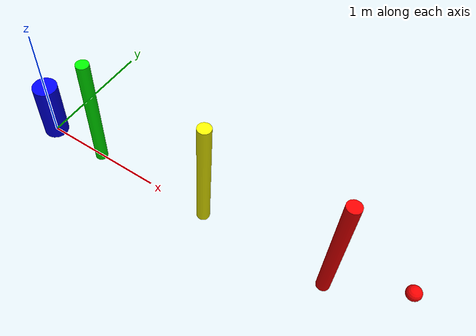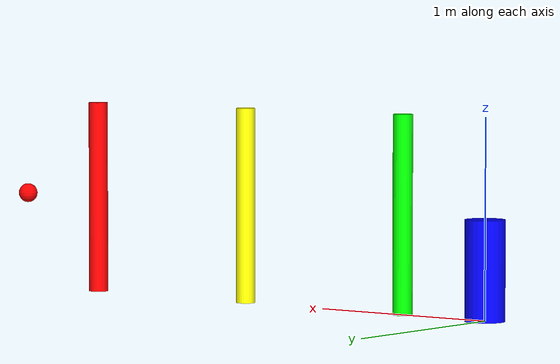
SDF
<sdf version='1.11'>
  <model name='planar_arm'>
    <link name='base_link'>
      <inertial>
        <pose>0 0 0 0 0 0</pose>
        <mass>1</mass>
        <inertia>
          <ixx>0.01</ixx>
          <ixy>0</ixy>
          <ixz>0</ixz>
          <iyy>0.01</iyy>
          <iyz>0</iyz>
          <izz>0.01</izz>
        </inertia>
      </inertial>
      <collision name='base_link_collision'>
        <pose>0 0 0.25 0 0 0</pose>
        <geometry>
          <cylinder>
            <length>0.5</length>
            <radius>0.10000000000000001</radius>
          </cylinder>
        </geometry>
      </collision>
      <visual name='base_link_visual'>
        <pose>0 0 0.25 0 0 0</pose>
        <geometry>
          <cylinder>
            <length>0.5</length>
            <radius>0.10000000000000001</radius>
          </cylinder>
        </geometry>
        <material>
          <diffuse>0 0 1 1</diffuse>
          <ambient>0 0 1 1</ambient>
        </material>
      </visual>
    </link>

    <joint name='joint1' type='revolute'>
      <pose relative_to='base_link'>0 0 0.5 0 0 0</pose>
      <parent>base_link</parent>
      <child>link1</child>
      <axis>
        <xyz>0 1 0</xyz>
        <limit>
          <lower>-3.1400000000000001</lower>
          <upper>3.1400000000000001</upper>
          <effort>100</effort>
          <velocity>1</velocity>
        </limit>
        <dynamics>
          <spring_reference>0</spring_reference>
          <spring_stiffness>0</spring_stiffness>
        </dynamics>
      </axis>
    </joint>

    <link name='link1'>
      <pose relative_to='joint1'>0 0 0 0 0 0</pose>
      <inertial>
        <pose>0 0 0 0 0 0</pose>
        <mass>1</mass>
        <inertia>
          <ixx>0.01</ixx>
          <ixy>0</ixy>
          <ixz>0</ixz>
          <iyy>0.01</iyy>
          <iyz>0</iyz>
          <izz>0.01</izz>
        </inertia>
      </inertial>
      <collision name='link1_collision'>
        <pose>0.5 0 0 0 1.5707963267948966 0</pose>
        <geometry>
          <cylinder>
            <length>1</length>
            <radius>0.050000000000000003</radius>
          </cylinder>
        </geometry>
      </collision>
      <visual name='link1_visual'>
        <pose>0.5 0 0 0 0 0</pose>
        <geometry>
          <cylinder>
            <length>1</length>
            <radius>0.050000000000000003</radius>
          </cylinder>
        </geometry>
        <material>
          <diffuse>0 1 0 1</diffuse>
          <ambient>0 1 0 1</ambient>
        </material>
      </visual>
    </link>

    <joint name='joint2' type='revolute'>
      <pose relative_to='link1'>1 0 0 0 0 0</pose>
      <parent>link1</parent>
      <child>link2</child>
      <axis>
        <xyz>0 1 0</xyz>
        <limit>
          <lower>-3.1400000000000001</lower>
          <upper>3.1400000000000001</upper>
          <effort>100</effort>
          <velocity>1</velocity>
        </limit>
        <dynamics>
          <spring_reference>0</spring_reference>
          <spring_stiffness>0</spring_stiffness>
        </dynamics>
      </axis>
    </joint>

    <link name='link2'>
      <pose relative_to='joint2'>0 0 0 0 0 0</pose>
      <inertial>
        <pose>0 0 0 0 0 0</pose>
        <mass>1</mass>
        <inertia>
          <ixx>0.01</ixx>
          <ixy>0</ixy>
          <ixz>0</ixz>
          <iyy>0.01</iyy>
          <iyz>0</iyz>
          <izz>0.01</izz>
        </inertia>
      </inertial>
      <collision name='link2_collision'>
        <pose>0.5 0 0 0 1.5707963267948966 0</pose>
        <geometry>
          <cylinder>
            <length>1</length>
            <radius>0.050000000000000003</radius>
          </cylinder>
        </geometry>
      </collision>
      <visual name='link2_visual'>
        <pose>0.5 0 0 0 0 0</pose>
        <geometry>
          <cylinder>
            <length>1</length>
            <radius>0.050000000000000003</radius>
          </cylinder>
        </geometry>
        <material>
          <diffuse>1 1 0 1</diffuse>
          <ambient>1 1 0 1</ambient>
        </material>
      </visual>
    </link>

    <joint name='joint3' type='revolute'>
      <pose relative_to='link2'>1 0 0 0 0 0</pose>
      <parent>link2</parent>
      <child>link3</child>
      <axis>
        <xyz>0 1 0</xyz>
        <limit>
          <lower>-3.1400000000000001</lower>
          <upper>3.1400000000000001</upper>
          <effort>100</effort>
          <velocity>1</velocity>
        </limit>
        <dynamics>
          <spring_reference>0</spring_reference>
          <spring_stiffness>0</spring_stiffness>
        </dynamics>
      </axis>
    </joint>

    <link name='link3'>
      <pose relative_to='joint3'>0 0 0 0 0 0</pose>
      <inertial>
        <pose>0.16666666666666671 0 0 0 0 0</pose>
        <mass>1.2</mass>
        <inertia>
          <ixx>0.010999999999999999</ixx>
          <ixy>0</ixy>
          <ixz>0</ixz>
          <iyy>0.17766666666666669</iyy>
          <iyz>0</iyz>
          <izz>0.17766666666666669</izz>
        </inertia>
      </inertial>
      <collision name='link3_collision'>
        <pose>0.5 0 0 0 1.5707963267948966 0</pose>
        <geometry>
          <cylinder>
            <length>1</length>
            <radius>0.050000000000000003</radius>
          </cylinder>
        </geometry>
      </collision>
      <collision name='link3_fixed_joint_lump__end_effector_collision_1'>
        <pose>1 0 0 0 0 0</pose>
        <geometry>
          <sphere>
            <radius>0.050000000000000003</radius>
          </sphere>
        </geometry>
      </collision>
      <visual name='link3_visual'>
        <pose>0.5 0 0 0 0 0</pose>
        <geometry>
          <cylinder>
            <length>1</length>
            <radius>0.050000000000000003</radius>
          </cylinder>
        </geometry>
        <material>
          <diffuse>1 0 0 1</diffuse>
          <ambient>1 0 0 1</ambient>
        </material>
      </visual>
      <visual name='link3_fixed_joint_lump__end_effector_visual_1'>
        <pose>1 0 0 0 0 0</pose>
        <geometry>
          <sphere>
            <radius>0.050000000000000003</radius>
          </sphere>
        </geometry>
        <material>
          <diffuse>1 0 0 1</diffuse>
          <ambient>1 0 0 1</ambient>
        </material>
      </visual>
    </link>

    <frame name='joint4' attached_to='link3'>
      <pose>1 0 0 0 0 0</pose>
    </frame>
    <frame name='end_effector' attached_to='joint4'>
      <pose>0 0 0 0 0 0</pose>
    </frame>

    <!-- joint1 -->
    <plugin filename="gz-sim-joint-position-controller-system"
            name="gz::sim::systems::JointPositionController">
      <joint_name>joint1</joint_name>
      <topic>/model/planar_arm/joint/joint1/cmd_pos</topic>
    </plugin>

    <!-- joint2 -->
    <plugin filename="gz-sim-joint-position-controller-system"
            name="gz::sim::systems::JointPositionController">
      <joint_name>joint2</joint_name>
      <topic>/model/planar_arm/joint/joint2/cmd_pos</topic>
    </plugin>

    <!-- joint3 -->
    <plugin filename="gz-sim-joint-position-controller-system"
            name="gz::sim::systems::JointPositionController">
      <joint_name>joint3</joint_name>
      <topic>/model/planar_arm/joint/joint3/cmd_pos</topic>
    </plugin>

  </model>
</sdf>
